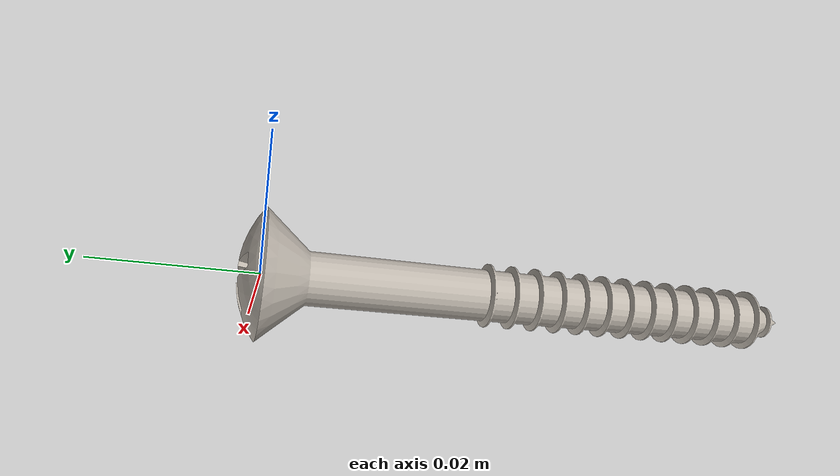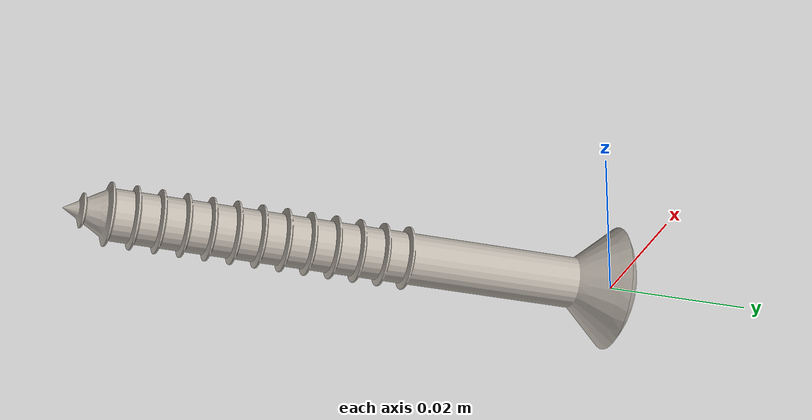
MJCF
<?xml version="1.0" ?>
<mujoco model="screw">
  <asset>
    <mesh file="../meshes/screw.stl" name="screw_mesh" scale="0.002 0.002 0.002"/>
    <texture file="../textures/screw.png" type="2d" name="tex-screw"/>
    <material name="screw" reflectance="0.7" texrepeat="15 15" texture="tex-screw" texuniform="true"/>
  </asset>
  <worldbody>
    <body>
      <body name="object">
        <geom pos="0 0 0" mesh="screw_mesh" type="mesh" solimp="0.998 0.998 0.001" solref="0.001 1" density="50" friction="0.95 0.3 0.1" material="screw" group="0" condim="4"/>
        <site rgba="0 0 0 0" size="0.005" pos="0.0 0.002724 0.0" name="head_site"/>
      </body>
      <site rgba="0 0 0 0" size="0.005" pos="0.0 -0.076200 0.0" name="bottom_site"/>
      <site rgba="0 0 0 0" size="0.005" pos="0.0 0.002724 0.0" name="top_site"/>
      <site rgba="0 0 0 0" size="0.005" pos="0.00839682674407959 0.03946182632446289 0" name="horizontal_radius_site"/>
    </body>
  </worldbody>
</mujoco>
